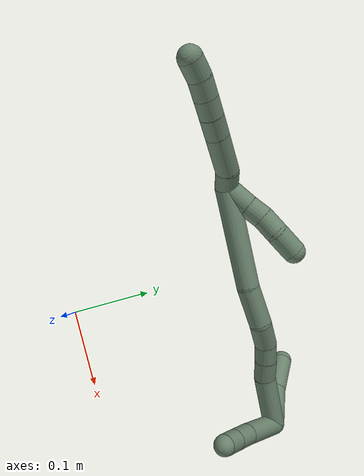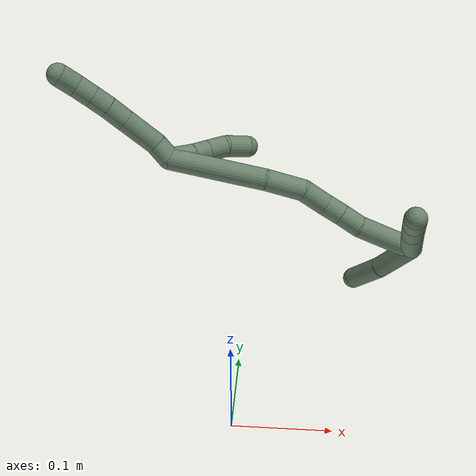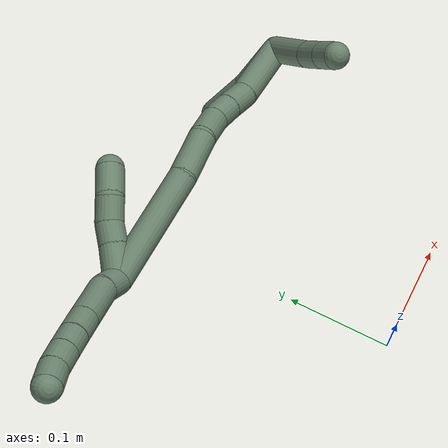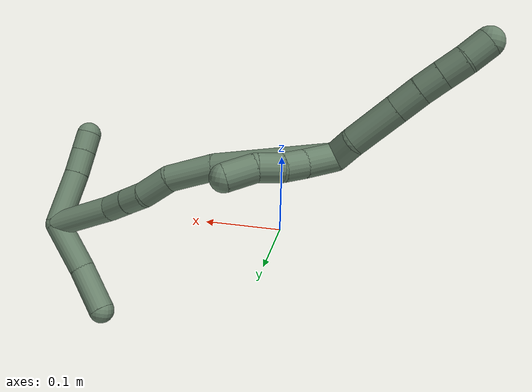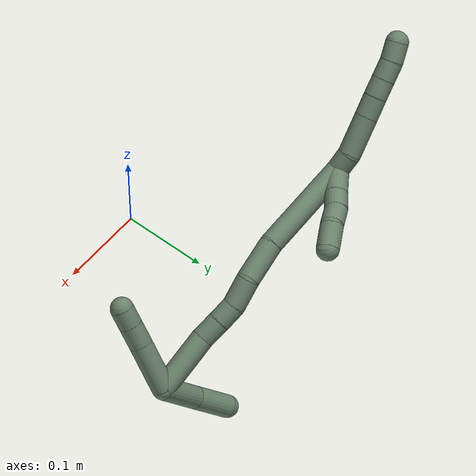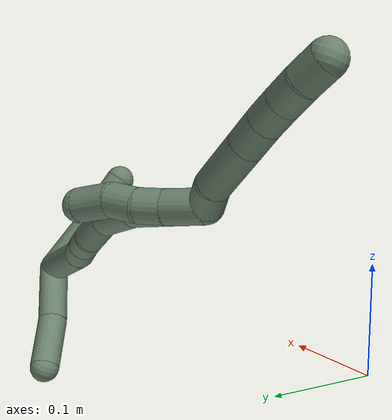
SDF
<sdf version="1.7">
 <world name="default">
  <model name="17">
   <static>0</static>
   <link name="17">
    <collision name="collision-cylinder-e_1_2_8">
     <pose>-0.006345 0.004807 0.007498 -0.570079 -0.619 0.186855</pose>
     <geometry><cylinder><radius>0.0125</radius><length>0.021872</length></cylinder></geometry>
     <surface>
      <friction><ode><mu>1.16</mu><mu2>1.16</mu2><slip1>0</slip1><slip2>0</slip2></ode></friction>
      <contact><ode><kp>1e+06</kp><kd>1</kd><max_vel>0</max_vel><min_depth>0.001</min_depth></ode></contact>
     </surface>
    </collision>
    <visual name="visual-cylinder-e_1_2_8">
     <pose>-0.006345 0.004807 0.007498 -0.570079 -0.619 0.186855</pose>
     <geometry><cylinder><radius>0.0125</radius><length>0.021872</length></cylinder></geometry>
     <material><ambient>0.415686 0.509804 0.423529 1</ambient></material>
    </visual>
    <collision name="collision-cylinder-e_2_8_9">
     <pose>-0.027251 0.013329 0.030946 -0.228844 -0.726781 0.087351</pose>
     <geometry><cylinder><radius>0.0125</radius><length>0.043825</length></cylinder></geometry>
     <surface>
      <friction><ode><mu>1.16</mu><mu2>1.16</mu2><slip1>0</slip1><slip2>0</slip2></ode></friction>
      <contact><ode><kp>1e+06</kp><kd>1</kd><max_vel>0</max_vel><min_depth>0.001</min_depth></ode></contact>
     </surface>
    </collision>
    <visual name="visual-cylinder-e_2_8_9">
     <pose>-0.027251 0.013329 0.030946 -0.228844 -0.726781 0.087351</pose>
     <geometry><cylinder><radius>0.0125</radius><length>0.043825</length></cylinder></geometry>
     <material><ambient>0.415686 0.509804 0.423529 1</ambient></material>
    </visual>
    <collision name="collision-cylinder-e_3_9_10">
     <pose>-0.049357 0.018951 0.055258 -0.224231 -0.721465 0.084894</pose>
     <geometry><cylinder><radius>0.0125</radius><length>0.022851</length></cylinder></geometry>
     <surface>
      <friction><ode><mu>1.16</mu><mu2>1.16</mu2><slip1>0</slip1><slip2>0</slip2></ode></friction>
      <contact><ode><kp>1e+06</kp><kd>1</kd><max_vel>0</max_vel><min_depth>0.001</min_depth></ode></contact>
     </surface>
    </collision>
    <visual name="visual-cylinder-e_3_9_10">
     <pose>-0.049357 0.018951 0.055258 -0.224231 -0.721465 0.084894</pose>
     <geometry><cylinder><radius>0.0125</radius><length>0.022851</length></cylinder></geometry>
     <material><ambient>0.415686 0.509804 0.423529 1</ambient></material>
    </visual>
    <collision name="collision-cylinder-e_4_10_11">
     <pose>-0.063943 0.022384 0.070667 -0.213241 -0.773544 0.087126</pose>
     <geometry><cylinder><radius>0.0125</radius><length>0.020151</length></cylinder></geometry>
     <surface>
      <friction><ode><mu>1.16</mu><mu2>1.16</mu2><slip1>0</slip1><slip2>0</slip2></ode></friction>
      <contact><ode><kp>1e+06</kp><kd>1</kd><max_vel>0</max_vel><min_depth>0.001</min_depth></ode></contact>
     </surface>
    </collision>
    <visual name="visual-cylinder-e_4_10_11">
     <pose>-0.063943 0.022384 0.070667 -0.213241 -0.773544 0.087126</pose>
     <geometry><cylinder><radius>0.0125</radius><length>0.020151</length></cylinder></geometry>
     <material><ambient>0.415686 0.509804 0.423529 1</ambient></material>
    </visual>
    <collision name="collision-cylinder-e_5_11_12">
     <pose>-0.078206 0.025337 0.084781 -0.199135 -0.786228 0.082808</pose>
     <geometry><cylinder><radius>0.0125</radius><length>0.020414</length></cylinder></geometry>
     <surface>
      <friction><ode><mu>1.16</mu><mu2>1.16</mu2><slip1>0</slip1><slip2>0</slip2></ode></friction>
      <contact><ode><kp>1e+06</kp><kd>1</kd><max_vel>0</max_vel><min_depth>0.001</min_depth></ode></contact>
     </surface>
    </collision>
    <visual name="visual-cylinder-e_5_11_12">
     <pose>-0.078206 0.025337 0.084781 -0.199135 -0.786228 0.082808</pose>
     <geometry><cylinder><radius>0.0125</radius><length>0.020414</length></cylinder></geometry>
     <material><ambient>0.415686 0.509804 0.423529 1</ambient></material>
    </visual>
    <collision name="collision-cylinder-e_6_12_6">
     <pose>-0.092311 0.026863 0.099705 -0.012758 -0.719442 0.004798</pose>
     <geometry><cylinder><radius>0.0125</radius><length>0.020887</length></cylinder></geometry>
     <surface>
      <friction><ode><mu>1.16</mu><mu2>1.16</mu2><slip1>0</slip1><slip2>0</slip2></ode></friction>
      <contact><ode><kp>1e+06</kp><kd>1</kd><max_vel>0</max_vel><min_depth>0.001</min_depth></ode></contact>
     </surface>
    </collision>
    <visual name="visual-cylinder-e_6_12_6">
     <pose>-0.092311 0.026863 0.099705 -0.012758 -0.719442 0.004798</pose>
     <geometry><cylinder><radius>0.0125</radius><length>0.020887</length></cylinder></geometry>
     <material><ambient>0.415686 0.509804 0.423529 1</ambient></material>
    </visual>
    <collision name="collision-cylinder-e_1_2_13">
     <pose>0.011864 0.007273 -0.005453 -2.2142 0.916995 -1.55774</pose>
     <geometry><cylinder><radius>0.0125</radius><length>0.029892</length></cylinder></geometry>
     <surface>
      <friction><ode><mu>1.16</mu><mu2>1.16</mu2><slip1>0</slip1><slip2>0</slip2></ode></friction>
      <contact><ode><kp>1e+06</kp><kd>1</kd><max_vel>0</max_vel><min_depth>0.001</min_depth></ode></contact>
     </surface>
    </collision>
    <visual name="visual-cylinder-e_1_2_13">
     <pose>0.011864 0.007273 -0.005453 -2.2142 0.916995 -1.55774</pose>
     <geometry><cylinder><radius>0.0125</radius><length>0.029892</length></cylinder></geometry>
     <material><ambient>0.415686 0.509804 0.423529 1</ambient></material>
    </visual>
    <collision name="collision-cylinder-e_2_13_14">
     <pose>0.031497 0.020091 -0.014081 -2.09071 0.882538 -1.36719</pose>
     <geometry><cylinder><radius>0.0125</radius><length>0.020118</length></cylinder></geometry>
     <surface>
      <friction><ode><mu>1.16</mu><mu2>1.16</mu2><slip1>0</slip1><slip2>0</slip2></ode></friction>
      <contact><ode><kp>1e+06</kp><kd>1</kd><max_vel>0</max_vel><min_depth>0.001</min_depth></ode></contact>
     </surface>
    </collision>
    <visual name="visual-cylinder-e_2_13_14">
     <pose>0.031497 0.020091 -0.014081 -2.09071 0.882538 -1.36719</pose>
     <geometry><cylinder><radius>0.0125</radius><length>0.020118</length></cylinder></geometry>
     <material><ambient>0.415686 0.509804 0.423529 1</ambient></material>
    </visual>
    <collision name="collision-cylinder-e_3_14_15">
     <pose>0.049167 0.030378 -0.019128 -1.94694 1.09525 -1.4618</pose>
     <geometry><cylinder><radius>0.0125</radius><length>0.022274</length></cylinder></geometry>
     <surface>
      <friction><ode><mu>1.16</mu><mu2>1.16</mu2><slip1>0</slip1><slip2>0</slip2></ode></friction>
      <contact><ode><kp>1e+06</kp><kd>1</kd><max_vel>0</max_vel><min_depth>0.001</min_depth></ode></contact>
     </surface>
    </collision>
    <visual name="visual-cylinder-e_3_14_15">
     <pose>0.049167 0.030378 -0.019128 -1.94694 1.09525 -1.4618</pose>
     <geometry><cylinder><radius>0.0125</radius><length>0.022274</length></cylinder></geometry>
     <material><ambient>0.415686 0.509804 0.423529 1</ambient></material>
    </visual>
    <collision name="collision-cylinder-e_4_15_5">
     <pose>0.07037 0.039942 -0.027409 -2.49649 0.953658 -1.99309</pose>
     <geometry><cylinder><radius>0.0125</radius><length>0.027717</length></cylinder></geometry>
     <surface>
      <friction><ode><mu>1.16</mu><mu2>1.16</mu2><slip1>0</slip1><slip2>0</slip2></ode></friction>
      <contact><ode><kp>1e+06</kp><kd>1</kd><max_vel>0</max_vel><min_depth>0.001</min_depth></ode></contact>
     </surface>
    </collision>
    <visual name="visual-cylinder-e_4_15_5">
     <pose>0.07037 0.039942 -0.027409 -2.49649 0.953658 -1.99309</pose>
     <geometry><cylinder><radius>0.0125</radius><length>0.027717</length></cylinder></geometry>
     <material><ambient>0.415686 0.509804 0.423529 1</ambient></material>
    </visual>
    <collision name="collision-cylinder-e_1_2_16">
     <pose>0.052783 -0.006319 -0.014599 2.73311 1.27808 2.59789</pose>
     <geometry><cylinder><radius>0.0125</radius><length>0.110256</length></cylinder></geometry>
     <surface>
      <friction><ode><mu>1.16</mu><mu2>1.16</mu2><slip1>0</slip1><slip2>0</slip2></ode></friction>
      <contact><ode><kp>1e+06</kp><kd>1</kd><max_vel>0</max_vel><min_depth>0.001</min_depth></ode></contact>
     </surface>
    </collision>
    <visual name="visual-cylinder-e_1_2_16">
     <pose>0.052783 -0.006319 -0.014599 2.73311 1.27808 2.59789</pose>
     <geometry><cylinder><radius>0.0125</radius><length>0.110256</length></cylinder></geometry>
     <material><ambient>0.415686 0.509804 0.423529 1</ambient></material>
    </visual>
    <collision name="collision-cylinder-e_2_16_17">
     <pose>0.125974 -0.013726 -0.038505 3.02521 1.1403 2.96037</pose>
     <geometry><cylinder><radius>0.0125</radius><length>0.044913</length></cylinder></geometry>
     <surface>
      <friction><ode><mu>1.16</mu><mu2>1.16</mu2><slip1>0</slip1><slip2>0</slip2></ode></friction>
      <contact><ode><kp>1e+06</kp><kd>1</kd><max_vel>0</max_vel><min_depth>0.001</min_depth></ode></contact>
     </surface>
    </collision>
    <visual name="visual-cylinder-e_2_16_17">
     <pose>0.125974 -0.013726 -0.038505 3.02521 1.1403 2.96037</pose>
     <geometry><cylinder><radius>0.0125</radius><length>0.044913</length></cylinder></geometry>
     <material><ambient>0.415686 0.509804 0.423529 1</ambient></material>
    </visual>
    <collision name="collision-cylinder-e_3_17_18">
     <pose>0.158103 -0.017608 -0.05795 2.87262 0.839636 2.55294</pose>
     <geometry><cylinder><radius>0.0125</radius><length>0.031494</length></cylinder></geometry>
     <surface>
      <friction><ode><mu>1.16</mu><mu2>1.16</mu2><slip1>0</slip1><slip2>0</slip2></ode></friction>
      <contact><ode><kp>1e+06</kp><kd>1</kd><max_vel>0</max_vel><min_depth>0.001</min_depth></ode></contact>
     </surface>
    </collision>
    <visual name="visual-cylinder-e_3_17_18">
     <pose>0.158103 -0.017608 -0.05795 2.87262 0.839636 2.55294</pose>
     <geometry><cylinder><radius>0.0125</radius><length>0.031494</length></cylinder></geometry>
     <material><ambient>0.415686 0.509804 0.423529 1</ambient></material>
    </visual>
    <collision name="collision-cylinder-e_4_18_19">
     <pose>0.178871 -0.024185 -0.073218 2.50621 0.956923 2.0115</pose>
     <geometry><cylinder><radius>0.0125</radius><length>0.022133</length></cylinder></geometry>
     <surface>
      <friction><ode><mu>1.16</mu><mu2>1.16</mu2><slip1>0</slip1><slip2>0</slip2></ode></friction>
      <contact><ode><kp>1e+06</kp><kd>1</kd><max_vel>0</max_vel><min_depth>0.001</min_depth></ode></contact>
     </surface>
    </collision>
    <visual name="visual-cylinder-e_4_18_19">
     <pose>0.178871 -0.024185 -0.073218 2.50621 0.956923 2.0115</pose>
     <geometry><cylinder><radius>0.0125</radius><length>0.022133</length></cylinder></geometry>
     <material><ambient>0.415686 0.509804 0.423529 1</ambient></material>
    </visual>
    <collision name="collision-cylinder-e_5_19_20">
     <pose>0.197906 -0.032745 -0.084106 2.44904 0.928013 1.89226</pose>
     <geometry><cylinder><radius>0.0125</radius><length>0.02496</length></cylinder></geometry>
     <surface>
      <friction><ode><mu>1.16</mu><mu2>1.16</mu2><slip1>0</slip1><slip2>0</slip2></ode></friction>
      <contact><ode><kp>1e+06</kp><kd>1</kd><max_vel>0</max_vel><min_depth>0.001</min_depth></ode></contact>
     </surface>
    </collision>
    <visual name="visual-cylinder-e_5_19_20">
     <pose>0.197906 -0.032745 -0.084106 2.44904 0.928013 1.89226</pose>
     <geometry><cylinder><radius>0.0125</radius><length>0.02496</length></cylinder></geometry>
     <material><ambient>0.415686 0.509804 0.423529 1</ambient></material>
    </visual>
    <collision name="collision-cylinder-e_6_20_1">
     <pose>0.237028 -0.043667 -0.104375 2.74102 1.07492 2.48499</pose>
     <geometry><cylinder><radius>0.0125</radius><length>0.066245</length></cylinder></geometry>
     <surface>
      <friction><ode><mu>1.16</mu><mu2>1.16</mu2><slip1>0</slip1><slip2>0</slip2></ode></friction>
      <contact><ode><kp>1e+06</kp><kd>1</kd><max_vel>0</max_vel><min_depth>0.001</min_depth></ode></contact>
     </surface>
    </collision>
    <visual name="visual-cylinder-e_6_20_1">
     <pose>0.237028 -0.043667 -0.104375 2.74102 1.07492 2.48499</pose>
     <geometry><cylinder><radius>0.0125</radius><length>0.066245</length></cylinder></geometry>
     <material><ambient>0.415686 0.509804 0.423529 1</ambient></material>
    </visual>
    <collision name="collision-cylinder-e_1_1_21">
     <pose>0.265209 -0.059035 -0.092979 0.341982 -0.034595 -0.005974</pose>
     <geometry><cylinder><radius>0.0125</radius><length>0.055034</length></cylinder></geometry>
     <surface>
      <friction><ode><mu>1.16</mu><mu2>1.16</mu2><slip1>0</slip1><slip2>0</slip2></ode></friction>
      <contact><ode><kp>1e+06</kp><kd>1</kd><max_vel>0</max_vel><min_depth>0.001</min_depth></ode></contact>
     </surface>
    </collision>
    <visual name="visual-cylinder-e_1_1_21">
     <pose>0.265209 -0.059035 -0.092979 0.341982 -0.034595 -0.005974</pose>
     <geometry><cylinder><radius>0.0125</radius><length>0.055034</length></cylinder></geometry>
     <material><ambient>0.415686 0.509804 0.423529 1</ambient></material>
    </visual>
    <collision name="collision-cylinder-e_2_21_22">
     <pose>0.264332 -0.07191 -0.055199 0.298419 0.005995 0.000901</pose>
     <geometry><cylinder><radius>0.0125</radius><length>0.024844</length></cylinder></geometry>
     <surface>
      <friction><ode><mu>1.16</mu><mu2>1.16</mu2><slip1>0</slip1><slip2>0</slip2></ode></friction>
      <contact><ode><kp>1e+06</kp><kd>1</kd><max_vel>0</max_vel><min_depth>0.001</min_depth></ode></contact>
     </surface>
    </collision>
    <visual name="visual-cylinder-e_2_21_22">
     <pose>0.264332 -0.07191 -0.055199 0.298419 0.005995 0.000901</pose>
     <geometry><cylinder><radius>0.0125</radius><length>0.024844</length></cylinder></geometry>
     <material><ambient>0.415686 0.509804 0.423529 1</ambient></material>
    </visual>
    <collision name="collision-cylinder-e_3_22_4">
     <pose>0.264474 -0.078498 -0.033703 0.296207 0.006675 0.000996</pose>
     <geometry><cylinder><radius>0.0125</radius><length>0.020122</length></cylinder></geometry>
     <surface>
      <friction><ode><mu>1.16</mu><mu2>1.16</mu2><slip1>0</slip1><slip2>0</slip2></ode></friction>
      <contact><ode><kp>1e+06</kp><kd>1</kd><max_vel>0</max_vel><min_depth>0.001</min_depth></ode></contact>
     </surface>
    </collision>
    <visual name="visual-cylinder-e_3_22_4">
     <pose>0.264474 -0.078498 -0.033703 0.296207 0.006675 0.000996</pose>
     <geometry><cylinder><radius>0.0125</radius><length>0.020122</length></cylinder></geometry>
     <material><ambient>0.415686 0.509804 0.423529 1</ambient></material>
    </visual>
    <collision name="collision-cylinder-e_1_1_23">
     <pose>0.248498 -0.048881 -0.138393 -3.09387 -0.735315 3.01783</pose>
     <geometry><cylinder><radius>0.0125</radius><length>0.052662</length></cylinder></geometry>
     <surface>
      <friction><ode><mu>1.16</mu><mu2>1.16</mu2><slip1>0</slip1><slip2>0</slip2></ode></friction>
      <contact><ode><kp>1e+06</kp><kd>1</kd><max_vel>0</max_vel><min_depth>0.001</min_depth></ode></contact>
     </surface>
    </collision>
    <visual name="visual-cylinder-e_1_1_23">
     <pose>0.248498 -0.048881 -0.138393 -3.09387 -0.735315 3.01783</pose>
     <geometry><cylinder><radius>0.0125</radius><length>0.052662</length></cylinder></geometry>
     <material><ambient>0.415686 0.509804 0.423529 1</ambient></material>
    </visual>
    <collision name="collision-cylinder-e_2_23_3">
     <pose>0.214888 -0.043461 -0.174804 -2.88209 -0.739219 2.49183</pose>
     <geometry><cylinder><radius>0.0125</radius><length>0.047338</length></cylinder></geometry>
     <surface>
      <friction><ode><mu>1.16</mu><mu2>1.16</mu2><slip1>0</slip1><slip2>0</slip2></ode></friction>
      <contact><ode><kp>1e+06</kp><kd>1</kd><max_vel>0</max_vel><min_depth>0.001</min_depth></ode></contact>
     </surface>
    </collision>
    <visual name="visual-cylinder-e_2_23_3">
     <pose>0.214888 -0.043461 -0.174804 -2.88209 -0.739219 2.49183</pose>
     <geometry><cylinder><radius>0.0125</radius><length>0.047338</length></cylinder></geometry>
     <material><ambient>0.415686 0.509804 0.423529 1</ambient></material>
    </visual>
    <collision name="collision-sphere-3">
     <pose>0.198942 -0.038973 -0.191709 0 -0 0</pose>
     <geometry><sphere><radius>0.0125</radius></sphere></geometry>
     <surface>
      <friction><ode><mu>1.16</mu><mu2>1.16</mu2><slip1>0</slip1><slip2>0</slip2></ode></friction>
      <contact><ode><kp>1e+06</kp><kd>1</kd><max_vel>0</max_vel><min_depth>0.001</min_depth></ode></contact>
     </surface>
    </collision>
    <visual name="visual-sphere-3">
     <pose>0.198942 -0.038973 -0.191709 0 -0 0</pose>
     <geometry><sphere><radius>0.0125</radius></sphere></geometry>
     <material><ambient>0.415686 0.509804 0.423529 1</ambient></material>
    </visual>
    <collision name="collision-sphere-23">
     <pose>0.230834 -0.047949 -0.157898 0 -0 0</pose>
     <geometry><sphere><radius>0.0125</radius></sphere></geometry>
     <surface>
      <friction><ode><mu>1.16</mu><mu2>1.16</mu2><slip1>0</slip1><slip2>0</slip2></ode></friction>
      <contact><ode><kp>1e+06</kp><kd>1</kd><max_vel>0</max_vel><min_depth>0.001</min_depth></ode></contact>
     </surface>
    </collision>
    <visual name="visual-sphere-23">
     <pose>0.230834 -0.047949 -0.157898 0 -0 0</pose>
     <geometry><sphere><radius>0.0125</radius></sphere></geometry>
     <material><ambient>0.415686 0.509804 0.423529 1</ambient></material>
    </visual>
    <collision name="collision-sphere-4">
     <pose>0.264541 -0.081435 -0.024081 0 -0 0</pose>
     <geometry><sphere><radius>0.0125</radius></sphere></geometry>
     <surface>
      <friction><ode><mu>1.16</mu><mu2>1.16</mu2><slip1>0</slip1><slip2>0</slip2></ode></friction>
      <contact><ode><kp>1e+06</kp><kd>1</kd><max_vel>0</max_vel><min_depth>0.001</min_depth></ode></contact>
     </surface>
    </collision>
    <visual name="visual-sphere-4">
     <pose>0.264541 -0.081435 -0.024081 0 -0 0</pose>
     <geometry><sphere><radius>0.0125</radius></sphere></geometry>
     <material><ambient>0.415686 0.509804 0.423529 1</ambient></material>
    </visual>
    <collision name="collision-sphere-22">
     <pose>0.264407 -0.075562 -0.043326 0 -0 0</pose>
     <geometry><sphere><radius>0.0125</radius></sphere></geometry>
     <surface>
      <friction><ode><mu>1.16</mu><mu2>1.16</mu2><slip1>0</slip1><slip2>0</slip2></ode></friction>
      <contact><ode><kp>1e+06</kp><kd>1</kd><max_vel>0</max_vel><min_depth>0.001</min_depth></ode></contact>
     </surface>
    </collision>
    <visual name="visual-sphere-22">
     <pose>0.264407 -0.075562 -0.043326 0 -0 0</pose>
     <geometry><sphere><radius>0.0125</radius></sphere></geometry>
     <material><ambient>0.415686 0.509804 0.423529 1</ambient></material>
    </visual>
    <collision name="collision-sphere-21">
     <pose>0.264258 -0.068257 -0.067071 0 -0 0</pose>
     <geometry><sphere><radius>0.0125</radius></sphere></geometry>
     <surface>
      <friction><ode><mu>1.16</mu><mu2>1.16</mu2><slip1>0</slip1><slip2>0</slip2></ode></friction>
      <contact><ode><kp>1e+06</kp><kd>1</kd><max_vel>0</max_vel><min_depth>0.001</min_depth></ode></contact>
     </surface>
    </collision>
    <visual name="visual-sphere-21">
     <pose>0.264258 -0.068257 -0.067071 0 -0 0</pose>
     <geometry><sphere><radius>0.0125</radius></sphere></geometry>
     <material><ambient>0.415686 0.509804 0.423529 1</ambient></material>
    </visual>
    <collision name="collision-sphere-1">
     <pose>0.266161 -0.049813 -0.118887 0 -0 0</pose>
     <geometry><sphere><radius>0.0125</radius></sphere></geometry>
     <surface>
      <friction><ode><mu>1.16</mu><mu2>1.16</mu2><slip1>0</slip1><slip2>0</slip2></ode></friction>
      <contact><ode><kp>1e+06</kp><kd>1</kd><max_vel>0</max_vel><min_depth>0.001</min_depth></ode></contact>
     </surface>
    </collision>
    <visual name="visual-sphere-1">
     <pose>0.266161 -0.049813 -0.118887 0 -0 0</pose>
     <geometry><sphere><radius>0.0125</radius></sphere></geometry>
     <material><ambient>0.415686 0.509804 0.423529 1</ambient></material>
    </visual>
    <collision name="collision-sphere-12">
     <pose>-0.085429 0.026763 0.09185 0 -0 0</pose>
     <geometry><sphere><radius>0.0125</radius></sphere></geometry>
     <surface>
      <friction><ode><mu>1.16</mu><mu2>1.16</mu2><slip1>0</slip1><slip2>0</slip2></ode></friction>
      <contact><ode><kp>1e+06</kp><kd>1</kd><max_vel>0</max_vel><min_depth>0.001</min_depth></ode></contact>
     </surface>
    </collision>
    <visual name="visual-sphere-12">
     <pose>-0.085429 0.026763 0.09185 0 -0 0</pose>
     <geometry><sphere><radius>0.0125</radius></sphere></geometry>
     <material><ambient>0.415686 0.509804 0.423529 1</ambient></material>
    </visual>
    <collision name="collision-sphere-11">
     <pose>-0.070983 0.02391 0.077712 0 -0 0</pose>
     <geometry><sphere><radius>0.0125</radius></sphere></geometry>
     <surface>
      <friction><ode><mu>1.16</mu><mu2>1.16</mu2><slip1>0</slip1><slip2>0</slip2></ode></friction>
      <contact><ode><kp>1e+06</kp><kd>1</kd><max_vel>0</max_vel><min_depth>0.001</min_depth></ode></contact>
     </surface>
    </collision>
    <visual name="visual-sphere-11">
     <pose>-0.070983 0.02391 0.077712 0 -0 0</pose>
     <geometry><sphere><radius>0.0125</radius></sphere></geometry>
     <material><ambient>0.415686 0.509804 0.423529 1</ambient></material>
    </visual>
    <collision name="collision-sphere-10">
     <pose>-0.056903 0.020859 0.063622 0 -0 0</pose>
     <geometry><sphere><radius>0.0125</radius></sphere></geometry>
     <surface>
      <friction><ode><mu>1.16</mu><mu2>1.16</mu2><slip1>0</slip1><slip2>0</slip2></ode></friction>
      <contact><ode><kp>1e+06</kp><kd>1</kd><max_vel>0</max_vel><min_depth>0.001</min_depth></ode></contact>
     </surface>
    </collision>
    <visual name="visual-sphere-10">
     <pose>-0.056903 0.020859 0.063622 0 -0 0</pose>
     <geometry><sphere><radius>0.0125</radius></sphere></geometry>
     <material><ambient>0.415686 0.509804 0.423529 1</ambient></material>
    </visual>
    <collision name="collision-sphere-9">
     <pose>-0.041811 0.017044 0.046894 0 -0 0</pose>
     <geometry><sphere><radius>0.0125</radius></sphere></geometry>
     <surface>
      <friction><ode><mu>1.16</mu><mu2>1.16</mu2><slip1>0</slip1><slip2>0</slip2></ode></friction>
      <contact><ode><kp>1e+06</kp><kd>1</kd><max_vel>0</max_vel><min_depth>0.001</min_depth></ode></contact>
     </surface>
    </collision>
    <visual name="visual-sphere-9">
     <pose>-0.041811 0.017044 0.046894 0 -0 0</pose>
     <geometry><sphere><radius>0.0125</radius></sphere></geometry>
     <material><ambient>0.415686 0.509804 0.423529 1</ambient></material>
    </visual>
    <collision name="collision-sphere-2">
     <geometry><sphere><radius>0.0125</radius></sphere></geometry>
     <surface>
      <friction><ode><mu>1.16</mu><mu2>1.16</mu2><slip1>0</slip1><slip2>0</slip2></ode></friction>
      <contact><ode><kp>1e+06</kp><kd>1</kd><max_vel>0</max_vel><min_depth>0.001</min_depth></ode></contact>
     </surface>
    </collision>
    <visual name="visual-sphere-2">
     <geometry><sphere><radius>0.0125</radius></sphere></geometry>
     <material><ambient>0.415686 0.509804 0.423529 1</ambient></material>
    </visual>
    <collision name="collision-sphere-19">
     <pose>0.187917 -0.027969 -0.078348 0 -0 0</pose>
     <geometry><sphere><radius>0.0125</radius></sphere></geometry>
     <surface>
      <friction><ode><mu>1.16</mu><mu2>1.16</mu2><slip1>0</slip1><slip2>0</slip2></ode></friction>
      <contact><ode><kp>1e+06</kp><kd>1</kd><max_vel>0</max_vel><min_depth>0.001</min_depth></ode></contact>
     </surface>
    </collision>
    <visual name="visual-sphere-19">
     <pose>0.187917 -0.027969 -0.078348 0 -0 0</pose>
     <geometry><sphere><radius>0.0125</radius></sphere></geometry>
     <material><ambient>0.415686 0.509804 0.423529 1</ambient></material>
    </visual>
    <collision name="collision-sphere-8">
     <pose>-0.012691 0.009614 0.014997 0 -0 0</pose>
     <geometry><sphere><radius>0.0125</radius></sphere></geometry>
     <surface>
      <friction><ode><mu>1.16</mu><mu2>1.16</mu2><slip1>0</slip1><slip2>0</slip2></ode></friction>
      <contact><ode><kp>1e+06</kp><kd>1</kd><max_vel>0</max_vel><min_depth>0.001</min_depth></ode></contact>
     </surface>
    </collision>
    <visual name="visual-sphere-8">
     <pose>-0.012691 0.009614 0.014997 0 -0 0</pose>
     <geometry><sphere><radius>0.0125</radius></sphere></geometry>
     <material><ambient>0.415686 0.509804 0.423529 1</ambient></material>
    </visual>
    <collision name="collision-sphere-6">
     <pose>-0.099193 0.026964 0.107559 0 -0 0</pose>
     <geometry><sphere><radius>0.0125</radius></sphere></geometry>
     <surface>
      <friction><ode><mu>1.16</mu><mu2>1.16</mu2><slip1>0</slip1><slip2>0</slip2></ode></friction>
      <contact><ode><kp>1e+06</kp><kd>1</kd><max_vel>0</max_vel><min_depth>0.001</min_depth></ode></contact>
     </surface>
    </collision>
    <visual name="visual-sphere-6">
     <pose>-0.099193 0.026964 0.107559 0 -0 0</pose>
     <geometry><sphere><radius>0.0125</radius></sphere></geometry>
     <material><ambient>0.415686 0.509804 0.423529 1</ambient></material>
    </visual>
    <collision name="collision-sphere-13">
     <pose>0.023728 0.014546 -0.010907 0 -0 0</pose>
     <geometry><sphere><radius>0.0125</radius></sphere></geometry>
     <surface>
      <friction><ode><mu>1.16</mu><mu2>1.16</mu2><slip1>0</slip1><slip2>0</slip2></ode></friction>
      <contact><ode><kp>1e+06</kp><kd>1</kd><max_vel>0</max_vel><min_depth>0.001</min_depth></ode></contact>
     </surface>
    </collision>
    <visual name="visual-sphere-13">
     <pose>0.023728 0.014546 -0.010907 0 -0 0</pose>
     <geometry><sphere><radius>0.0125</radius></sphere></geometry>
     <material><ambient>0.415686 0.509804 0.423529 1</ambient></material>
    </visual>
    <collision name="collision-sphere-14">
     <pose>0.039265 0.025636 -0.017255 0 -0 0</pose>
     <geometry><sphere><radius>0.0125</radius></sphere></geometry>
     <surface>
      <friction><ode><mu>1.16</mu><mu2>1.16</mu2><slip1>0</slip1><slip2>0</slip2></ode></friction>
      <contact><ode><kp>1e+06</kp><kd>1</kd><max_vel>0</max_vel><min_depth>0.001</min_depth></ode></contact>
     </surface>
    </collision>
    <visual name="visual-sphere-14">
     <pose>0.039265 0.025636 -0.017255 0 -0 0</pose>
     <geometry><sphere><radius>0.0125</radius></sphere></geometry>
     <material><ambient>0.415686 0.509804 0.423529 1</ambient></material>
    </visual>
    <collision name="collision-sphere-15">
     <pose>0.059068 0.03512 -0.021001 0 -0 0</pose>
     <geometry><sphere><radius>0.0125</radius></sphere></geometry>
     <surface>
      <friction><ode><mu>1.16</mu><mu2>1.16</mu2><slip1>0</slip1><slip2>0</slip2></ode></friction>
      <contact><ode><kp>1e+06</kp><kd>1</kd><max_vel>0</max_vel><min_depth>0.001</min_depth></ode></contact>
     </surface>
    </collision>
    <visual name="visual-sphere-15">
     <pose>0.059068 0.03512 -0.021001 0 -0 0</pose>
     <geometry><sphere><radius>0.0125</radius></sphere></geometry>
     <material><ambient>0.415686 0.509804 0.423529 1</ambient></material>
    </visual>
    <collision name="collision-sphere-5">
     <pose>0.081672 0.044764 -0.033817 0 -0 0</pose>
     <geometry><sphere><radius>0.0125</radius></sphere></geometry>
     <surface>
      <friction><ode><mu>1.16</mu><mu2>1.16</mu2><slip1>0</slip1><slip2>0</slip2></ode></friction>
      <contact><ode><kp>1e+06</kp><kd>1</kd><max_vel>0</max_vel><min_depth>0.001</min_depth></ode></contact>
     </surface>
    </collision>
    <visual name="visual-sphere-5">
     <pose>0.081672 0.044764 -0.033817 0 -0 0</pose>
     <geometry><sphere><radius>0.0125</radius></sphere></geometry>
     <material><ambient>0.415686 0.509804 0.423529 1</ambient></material>
    </visual>
    <collision name="collision-sphere-16">
     <pose>0.105566 -0.012637 -0.029197 0 -0 0</pose>
     <geometry><sphere><radius>0.0125</radius></sphere></geometry>
     <surface>
      <friction><ode><mu>1.16</mu><mu2>1.16</mu2><slip1>0</slip1><slip2>0</slip2></ode></friction>
      <contact><ode><kp>1e+06</kp><kd>1</kd><max_vel>0</max_vel><min_depth>0.001</min_depth></ode></contact>
     </surface>
    </collision>
    <visual name="visual-sphere-16">
     <pose>0.105566 -0.012637 -0.029197 0 -0 0</pose>
     <geometry><sphere><radius>0.0125</radius></sphere></geometry>
     <material><ambient>0.415686 0.509804 0.423529 1</ambient></material>
    </visual>
    <collision name="collision-sphere-17">
     <pose>0.146381 -0.014814 -0.047814 0 -0 0</pose>
     <geometry><sphere><radius>0.0125</radius></sphere></geometry>
     <surface>
      <friction><ode><mu>1.16</mu><mu2>1.16</mu2><slip1>0</slip1><slip2>0</slip2></ode></friction>
      <contact><ode><kp>1e+06</kp><kd>1</kd><max_vel>0</max_vel><min_depth>0.001</min_depth></ode></contact>
     </surface>
    </collision>
    <visual name="visual-sphere-17">
     <pose>0.146381 -0.014814 -0.047814 0 -0 0</pose>
     <geometry><sphere><radius>0.0125</radius></sphere></geometry>
     <material><ambient>0.415686 0.509804 0.423529 1</ambient></material>
    </visual>
    <collision name="collision-sphere-18">
     <pose>0.169825 -0.020402 -0.068087 0 -0 0</pose>
     <geometry><sphere><radius>0.0125</radius></sphere></geometry>
     <surface>
      <friction><ode><mu>1.16</mu><mu2>1.16</mu2><slip1>0</slip1><slip2>0</slip2></ode></friction>
      <contact><ode><kp>1e+06</kp><kd>1</kd><max_vel>0</max_vel><min_depth>0.001</min_depth></ode></contact>
     </surface>
    </collision>
    <visual name="visual-sphere-18">
     <pose>0.169825 -0.020402 -0.068087 0 -0 0</pose>
     <geometry><sphere><radius>0.0125</radius></sphere></geometry>
     <material><ambient>0.415686 0.509804 0.423529 1</ambient></material>
    </visual>
    <collision name="collision-sphere-20">
     <pose>0.207896 -0.037522 -0.089863 0 -0 0</pose>
     <geometry><sphere><radius>0.0125</radius></sphere></geometry>
     <surface>
      <friction><ode><mu>1.16</mu><mu2>1.16</mu2><slip1>0</slip1><slip2>0</slip2></ode></friction>
      <contact><ode><kp>1e+06</kp><kd>1</kd><max_vel>0</max_vel><min_depth>0.001</min_depth></ode></contact>
     </surface>
    </collision>
    <visual name="visual-sphere-20">
     <pose>0.207896 -0.037522 -0.089863 0 -0 0</pose>
     <geometry><sphere><radius>0.0125</radius></sphere></geometry>
     <material><ambient>0.415686 0.509804 0.423529 1</ambient></material>
    </visual>
    <inertial>
     <pose>0.116747 -0.016403 -0.042853 0 -0 0</pose>
     <mass>0.75</mass>
     <inertia>
      <ixx>1.5e-05</ixx>
      <ixy>0</ixy>
      <ixz>0</ixz>
      <iyy>0.000251</iyy>
      <iyz>0</iyz>
      <izz>-0.000113</izz>
     </inertia>
    </inertial>
   </link>
   <pose>-0.086462 0.220736 0.183911 0.35925 -0.105373 -0.020045</pose>
  </model>
 </world>
</sdf>
